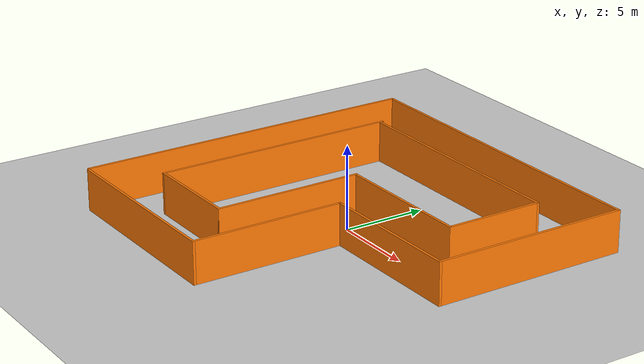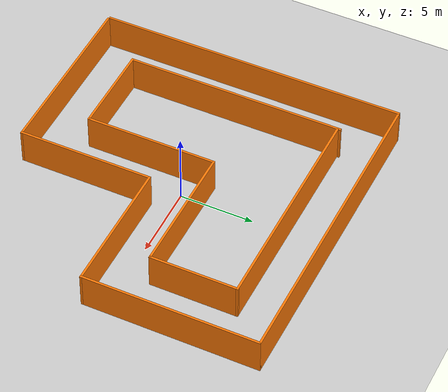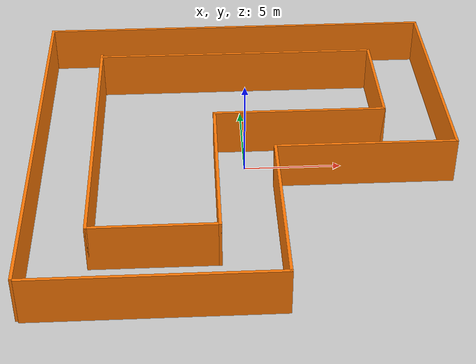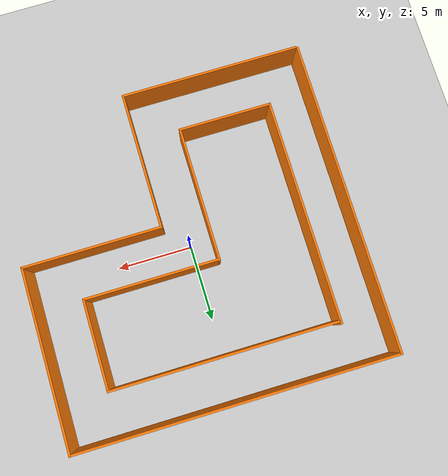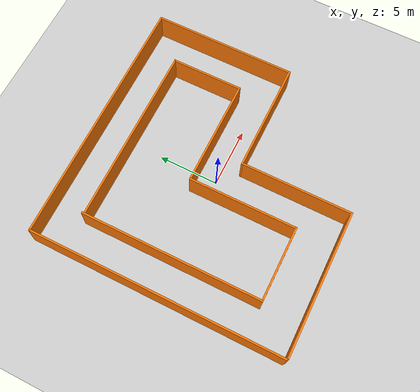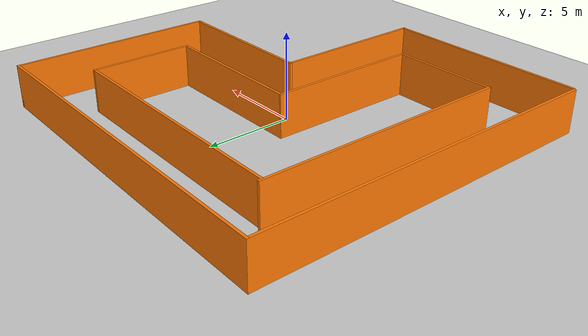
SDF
<sdf version="1.6">
 <world name="default">
  <light name="sun" type="directional">
   <pose>0 0 10 0 -0 0</pose>
   <diffuse>0.8 0.8 0.8 1</diffuse>
   <specular>0.1 0.1 0.1 1</specular>
   <attenuation>
    <range>1000</range>
    <constant>0.9</constant>
    <linear>0.01</linear>
    <quadratic>0.001</quadratic>
   </attenuation>
   <direction>-0.5 0.5 -1</direction>
  </light>
  <model name="ground_plane">
   <static>1</static>
   <link name="link">
    <collision name="collision">
     <geometry><plane><normal>0 0 1</normal><size>100 100</size></plane></geometry>
     <surface><friction><ode><mu>100</mu><mu2>50</mu2></ode></friction></surface>
    </collision>
    <visual name="visual">
     <cast_shadows>0</cast_shadows>
     <geometry><plane><normal>0 0 1</normal><size>100 100</size></plane></geometry>
     <material>
      <script><uri>file://media/materials/scripts/gazebo.material</uri><name>Gazebo/Grey</name></script>
     </material>
    </visual>
   </link>
  </model>
  <gravity>0 0 -9.8</gravity>
  <magnetic_field>6e-06 2.3e-05 -4.2e-05</magnetic_field>
  <atmosphere type="adiabatic"/>
  <physics name="default_physics" default="0" type="ode">
   <max_step_size>0.001</max_step_size>
   <real_time_factor>1</real_time_factor>
   <real_time_update_rate>0.0</real_time_update_rate>
  </physics>
  <scene><ambient>0.4 0.4 0.4 1</ambient><background>0.7 0.7 0.7 1</background><shadows>1</shadows></scene>
  <spherical_coordinates>
   <surface_model>EARTH_WGS84</surface_model>
   <latitude_deg>0</latitude_deg>
   <longitude_deg>0</longitude_deg>
   <elevation>0</elevation>
   <heading_deg>0</heading_deg>
  </spherical_coordinates>
  <model name="track1">
   <pose>0.012316 -0.073517 0 0 -0 0</pose>
   <link name="Wall_23">
    <collision name="Wall_23_Collision">
     <geometry><box><size>21 0.15 2.5</size></box></geometry>
     <pose>0 0 1.25 0 -0 0</pose>
    </collision>
    <visual name="Wall_23_Visual">
     <pose>0 0 1.25 0 -0 0</pose>
     <geometry><box><size>21 0.15 2.5</size></box></geometry>
     <material>
      <script><uri>file://media/materials/scripts/gazebo.material</uri><name>Gazebo/Grey</name></script>
      <ambient>0.996078 0.47451 0.0196078 1</ambient>
     </material>
    </visual>
    <pose>-10.55 0.049999 0 0 -0 1.5708</pose>
   </link>
   <link name="Wall_24">
    <collision name="Wall_24_Collision">
     <geometry><box><size>21.25 0.15 2.5</size></box></geometry>
     <pose>0 0 1.25 0 -0 0</pose>
    </collision>
    <visual name="Wall_24_Visual">
     <pose>0 0 1.25 0 -0 0</pose>
     <geometry><box><size>21.25 0.15 2.5</size></box></geometry>
     <material>
      <script><uri>file://media/materials/scripts/gazebo.material</uri><name>Gazebo/Grey</name></script>
      <ambient>0.996078 0.47451 0.0196078 1</ambient>
     </material>
    </visual>
    <pose>0 10.475 0 0 -0 0</pose>
   </link>
   <link name="Wall_25">
    <collision name="Wall_25_Collision">
     <geometry><box><size>12 0.15 2.5</size></box></geometry>
     <pose>0 0 1.25 0 -0 0</pose>
    </collision>
    <visual name="Wall_25_Visual">
     <pose>0 0 1.25 0 -0 0</pose>
     <geometry><box><size>12 0.15 2.5</size></box></geometry>
     <material>
      <script><uri>file://media/materials/scripts/gazebo.material</uri><name>Gazebo/Grey</name></script>
      <ambient>0.996078 0.47451 0.0196078 1</ambient>
     </material>
    </visual>
    <pose>10.55 4.55 0 0 0 -1.5708</pose>
   </link>
   <link name="Wall_26">
    <collision name="Wall_26_Collision">
     <geometry><box><size>9.25 0.15 2.5</size></box></geometry>
     <pose>0 0 1.25 0 -0 0</pose>
    </collision>
    <visual name="Wall_26_Visual">
     <pose>0 0 1.25 0 -0 0</pose>
     <geometry><box><size>9.25 0.15 2.5</size></box></geometry>
     <material>
      <script><uri>file://media/materials/scripts/gazebo.material</uri><name>Gazebo/Grey</name></script>
      <ambient>0.996078 0.47451 0.0196078 1</ambient>
     </material>
    </visual>
    <pose>6 -1.375 0 0 -0 3.14159</pose>
   </link>
   <link name="Wall_27">
    <collision name="Wall_27_Collision">
     <geometry><box><size>9.25 0.15 2.5</size></box></geometry>
     <pose>0 0 1.25 0 -0 0</pose>
    </collision>
    <visual name="Wall_27_Visual">
     <pose>0 0 1.25 0 -0 0</pose>
     <geometry><box><size>9.25 0.15 2.5</size></box></geometry>
     <material>
      <script><uri>file://media/materials/scripts/gazebo.material</uri><name>Gazebo/Grey</name></script>
      <ambient>0.996078 0.47451 0.0196078 1</ambient>
     </material>
    </visual>
    <pose>1.45 -5.925 0 0 0 -1.5708</pose>
   </link>
   <link name="Wall_28">
    <collision name="Wall_28_Collision">
     <geometry><box><size>12 0.15 2.5</size></box></geometry>
     <pose>0 0 1.25 0 -0 0</pose>
    </collision>
    <visual name="Wall_28_Visual">
     <pose>0 0 1.25 0 -0 0</pose>
     <geometry><box><size>12 0.15 2.5</size></box></geometry>
     <material>
      <script><uri>file://media/materials/scripts/gazebo.material</uri><name>Gazebo/Grey</name></script>
      <ambient>0.996078 0.47451 0.0196078 1</ambient>
     </material>
    </visual>
    <pose>-4.475 -10.475 0 0 -0 3.14159</pose>
   </link>
   <link name="Wall_30">
    <collision name="Wall_30_Collision">
     <geometry><box><size>15 0.15 2.5</size></box></geometry>
     <pose>0 0 1.25 0 -0 0</pose>
    </collision>
    <visual name="Wall_30_Visual">
     <pose>0 0 1.25 0 -0 0</pose>
     <geometry><box><size>15 0.15 2.5</size></box></geometry>
     <material>
      <script><uri>file://media/materials/scripts/gazebo.material</uri><name>Gazebo/Grey</name></script>
      <ambient>0.996078 0.47451 0.0196078 1</ambient>
     </material>
    </visual>
    <pose>-7.59937 0.222311 0 0 0 -1.5708</pose>
   </link>
   <link name="Wall_31">
    <collision name="Wall_31_Collision">
     <geometry><box><size>6.25 0.15 2.5</size></box></geometry>
     <pose>0 0 1.25 0 -0 0</pose>
    </collision>
    <visual name="Wall_31_Visual">
     <pose>0 0 1.25 0 -0 0</pose>
     <geometry><box><size>6.25 0.15 2.5</size></box></geometry>
     <material>
      <script><uri>file://media/materials/scripts/gazebo.material</uri><name>Gazebo/Grey</name></script>
      <ambient>0.996078 0.47451 0.0196078 1</ambient>
     </material>
    </visual>
    <pose>-4.54937 -7.20269 0 0 -0 0</pose>
   </link>
   <link name="Wall_32">
    <collision name="Wall_32_Collision">
     <geometry><box><size>9 0.15 2.5</size></box></geometry>
     <pose>0 0 1.25 0 -0 0</pose>
    </collision>
    <visual name="Wall_32_Visual">
     <pose>0 0 1.25 0 -0 0</pose>
     <geometry><box><size>9 0.15 2.5</size></box></geometry>
     <material>
      <script><uri>file://media/materials/scripts/gazebo.material</uri><name>Gazebo/Grey</name></script>
      <ambient>0.996078 0.47451 0.0196078 1</ambient>
     </material>
    </visual>
    <pose>-1.49937 -2.77769 0 0 -0 1.5708</pose>
   </link>
   <link name="Wall_33">
    <collision name="Wall_33_Collision">
     <geometry><box><size>9 0.15 2.5</size></box></geometry>
     <pose>0 0 1.25 0 -0 0</pose>
    </collision>
    <visual name="Wall_33_Visual">
     <pose>0 0 1.25 0 -0 0</pose>
     <geometry><box><size>9 0.15 2.5</size></box></geometry>
     <material>
      <script><uri>file://media/materials/scripts/gazebo.material</uri><name>Gazebo/Grey</name></script>
      <ambient>0.996078 0.47451 0.0196078 1</ambient>
     </material>
    </visual>
    <pose>2.92563 1.64731 0 0 -0 0</pose>
   </link>
   <link name="Wall_34">
    <collision name="Wall_34_Collision">
     <geometry><box><size>6 0.15 2.5</size></box></geometry>
     <pose>0 0 1.25 0 -0 0</pose>
    </collision>
    <visual name="Wall_34_Visual">
     <pose>0 0 1.25 0 -0 0</pose>
     <geometry><box><size>6 0.15 2.5</size></box></geometry>
     <material>
      <script><uri>file://media/materials/scripts/gazebo.material</uri><name>Gazebo/Grey</name></script>
      <ambient>0.996078 0.47451 0.0196078 1</ambient>
     </material>
    </visual>
    <pose>7.35063 4.57231 0 0 -0 1.5708</pose>
   </link>
   <link name="Wall_35">
    <collision name="Wall_35_Collision">
     <geometry><box><size>15 0.15 2.5</size></box></geometry>
     <pose>0 0 1.25 0 -0 0</pose>
    </collision>
    <visual name="Wall_35_Visual">
     <pose>0 0 1.25 0 -0 0</pose>
     <geometry><box><size>15 0.15 2.5</size></box></geometry>
     <material>
      <script><uri>file://media/materials/scripts/gazebo.material</uri><name>Gazebo/Grey</name></script>
      <ambient>0.996078 0.47451 0.0196078 1</ambient>
     </material>
    </visual>
    <pose>-0.074369 7.49731 0 0 -0 3.14159</pose>
   </link>
   <static>1</static>
  </model>
 </world>
</sdf>
